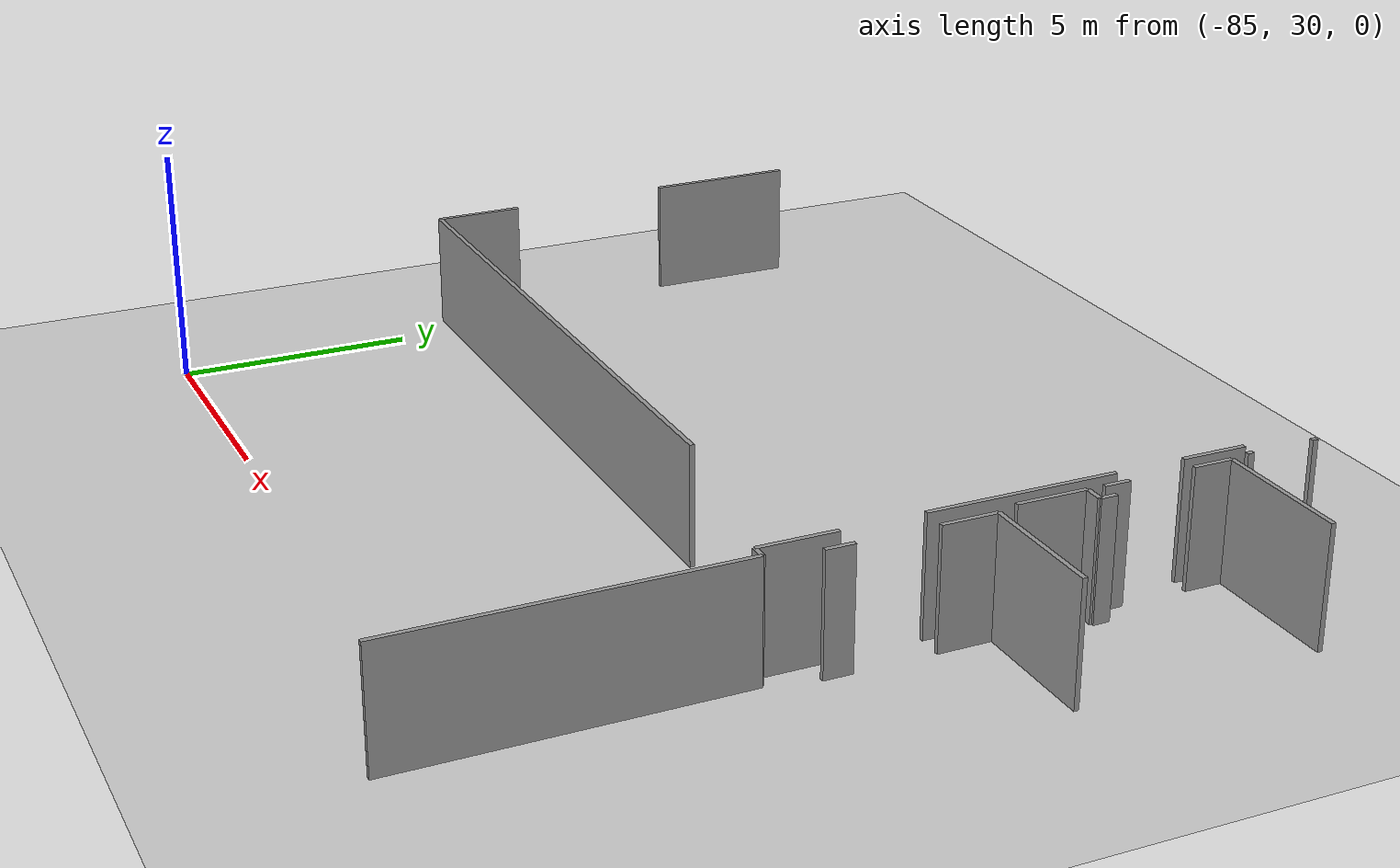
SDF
<sdf version="1.6">
 <world name="default">
  <model name="ground_plane">
   <static>1</static>
   <link name="link">
    <collision name="collision">
     <geometry><plane><normal>0 0 1</normal><size>100 100</size></plane></geometry>
     <surface><friction><ode><mu>100</mu><mu2>50</mu2></ode></friction></surface>
    </collision>
    <visual name="visual">
     <cast_shadows>0</cast_shadows>
     <geometry><plane><normal>0 0 1</normal><size>100 100</size></plane></geometry>
     <material>
      <script><uri>file://media/materials/scripts/gazebo.material</uri><name>Gazebo/Grey</name></script>
     </material>
    </visual>
   </link>
  </model>
  <model name="0510035517_A_40_1_105">
   <static>1</static>
   <link name="Wall_0">
    <collision name="Wall_0_Collision">
     <geometry><box><size>1.88991187104 0.1 2.5</size></box></geometry>
     <pose>0.94495593552 0 1.25 0 0 0</pose>
    </collision>
    <visual name="Wall_0_Visual">
     <pose>0.94495593552 0 1.25 0 0 0</pose>
     <geometry><box><size>1.88991187104 0.1 2.5</size></box></geometry>
     <material>
      <script><uri>file://media/materials/scripts/gazebo.material</uri><name>Gazebo/Grey</name></script>
      <ambient>1 1 1 1</ambient>
     </material>
    </visual>
    <pose>8.88151833425 -27.5061474238 0 0 0 1.57079632679</pose>
   </link>
   <link name="Wall_1">
    <collision name="Wall_1_Collision">
     <geometry><box><size>3.19170431368 0.1 2.5</size></box></geometry>
     <pose>1.59585215684 0 1.25 0 0 0</pose>
    </collision>
    <visual name="Wall_1_Visual">
     <pose>1.59585215684 0 1.25 0 0 0</pose>
     <geometry><box><size>3.19170431368 0.1 2.5</size></box></geometry>
     <material>
      <script><uri>file://media/materials/scripts/gazebo.material</uri><name>Gazebo/Grey</name></script>
      <ambient>1 1 1 1</ambient>
     </material>
    </visual>
    <pose>8.88151833425 -22.0173716348 0 0 0 1.57079632679</pose>
   </link>
   <link name="Wall_8">
    <collision name="Wall_8_Collision">
     <geometry><box><size>13.9150995061 0.1 2.5</size></box></geometry>
     <pose>6.95754975306 0 1.25 0 0 0</pose>
    </collision>
    <visual name="Wall_8_Visual">
     <pose>6.95754975306 0 1.25 0 0 0</pose>
     <geometry><box><size>13.9150995061 0.1 2.5</size></box></geometry>
     <material>
      <script><uri>file://media/materials/scripts/gazebo.material</uri><name>Gazebo/Grey</name></script>
      <ambient>1 1 1 1</ambient>
     </material>
    </visual>
    <pose>22.7966171696 -27.5018267538 0 0 0 -3.14128215132</pose>
   </link>
   <link name="Wall_123">
    <collision name="Wall_123_Collision">
     <geometry><box><size>1.34042431521 0.1 2.5</size></box></geometry>
     <pose>0.670212157603 0 1.25 0 0 0</pose>
    </collision>
    <visual name="Wall_123_Visual">
     <pose>0.670212157603 0 1.25 0 0 0</pose>
     <geometry><box><size>1.34042431521 0.1 2.5</size></box></geometry>
     <material>
      <script><uri>file://media/materials/scripts/gazebo.material</uri><name>Gazebo/Grey</name></script>
      <ambient>1 1 1 1</ambient>
     </material>
    </visual>
    <pose>27.0532395494 -18.3422605999 0 0 0 -1.57079632679</pose>
   </link>
   <link name="Wall_124">
    <collision name="Wall_124_Collision">
     <geometry><box><size>3.89368610333 0.1 2.5</size></box></geometry>
     <pose>1.94684305166 0 1.25 0 0 0</pose>
    </collision>
    <visual name="Wall_124_Visual">
     <pose>1.94684305166 0 1.25 0 0 0</pose>
     <geometry><box><size>3.89368610333 0.1 2.5</size></box></geometry>
     <material>
      <script><uri>file://media/materials/scripts/gazebo.material</uri><name>Gazebo/Grey</name></script>
      <ambient>1 1 1 1</ambient>
     </material>
    </visual>
    <pose>27.0532395494 -21.1123183571 0 0 0 -1.57079632679</pose>
   </link>
   <link name="Wall_125">
    <collision name="Wall_125_Collision">
     <geometry><box><size>1.61033910905 0.1 2.5</size></box></geometry>
     <pose>0.805169554526 0 1.25 0 0 0</pose>
    </collision>
    <visual name="Wall_125_Visual">
     <pose>0.805169554526 0 1.25 0 0 0</pose>
     <geometry><box><size>1.61033910905 0.1 2.5</size></box></geometry>
     <material>
      <script><uri>file://media/materials/scripts/gazebo.material</uri><name>Gazebo/Grey</name></script>
      <ambient>1 1 1 1</ambient>
     </material>
    </visual>
    <pose>27.0532395494 -26.6826785612 0 0 0 -1.57079632679</pose>
   </link>
   <link name="Wall_126">
    <collision name="Wall_126_Collision">
     <geometry><box><size>0.306513409962 0.1 2.5</size></box></geometry>
     <pose>0.153256704981 0 1.25 0 0 0</pose>
    </collision>
    <visual name="Wall_126_Visual">
     <pose>0.153256704981 0 1.25 0 0 0</pose>
     <geometry><box><size>0.306513409962 0.1 2.5</size></box></geometry>
     <material>
      <script><uri>file://media/materials/scripts/gazebo.material</uri><name>Gazebo/Grey</name></script>
      <ambient>1 1 1 1</ambient>
     </material>
    </visual>
    <pose>27.0532395494 -28.2930176703 0 0 0 0.0</pose>
   </link>
   <link name="Wall_127">
    <collision name="Wall_127_Collision">
     <geometry><box><size>6.99038661727 0.1 2.5</size></box></geometry>
     <pose>3.49519330864 0 1.25 0 0 0</pose>
    </collision>
    <visual name="Wall_127_Visual">
     <pose>3.49519330864 0 1.25 0 0 0</pose>
     <geometry><box><size>6.99038661727 0.1 2.5</size></box></geometry>
     <material>
      <script><uri>file://media/materials/scripts/gazebo.material</uri><name>Gazebo/Grey</name></script>
      <ambient>1 1 1 1</ambient>
     </material>
    </visual>
    <pose>27.3597529593 -28.2930176703 0 0 0 -1.56697871881</pose>
   </link>
   <link name="Wall_135">
    <collision name="Wall_135_Collision">
     <geometry><box><size>0.135719868092 0.1 2.5</size></box></geometry>
     <pose>0.0678599340462 0 1.25 0 0 0</pose>
    </collision>
    <visual name="Wall_135_Visual">
     <pose>0.0678599340462 0 1.25 0 0 0</pose>
     <geometry><box><size>0.135719868092 0.1 2.5</size></box></geometry>
     <material>
      <script><uri>file://media/materials/scripts/gazebo.material</uri><name>Gazebo/Grey</name></script>
      <ambient>1 1 1 1</ambient>
     </material>
    </visual>
    <pose>27.3394203948 -18.4901800067 0 0 0 1.57079632679</pose>
   </link>
   <link name="Wall_136">
    <collision name="Wall_136_Collision">
     <geometry><box><size>0.114116518302 0.1 2.5</size></box></geometry>
     <pose>0.0570582591512 0 1.25 0 0 0</pose>
    </collision>
    <visual name="Wall_136_Visual">
     <pose>0.0570582591512 0 1.25 0 0 0</pose>
     <geometry><box><size>0.114116518302 0.1 2.5</size></box></geometry>
     <material>
      <script><uri>file://media/materials/scripts/gazebo.material</uri><name>Gazebo/Grey</name></script>
      <ambient>1 1 1 1</ambient>
     </material>
    </visual>
    <pose>27.3394203948 -17.0455512984 0 0 0 1.57079632679</pose>
   </link>
   <link name="Wall_141">
    <collision name="Wall_141_Collision">
     <geometry><box><size>1.45327004823 0.1 2.5</size></box></geometry>
     <pose>0.726635024113 0 1.25 0 0 0</pose>
    </collision>
    <visual name="Wall_141_Visual">
     <pose>0.726635024113 0 1.25 0 0 0</pose>
     <geometry><box><size>1.45327004823 0.1 2.5</size></box></geometry>
     <material>
      <script><uri>file://media/materials/scripts/gazebo.material</uri><name>Gazebo/Grey</name></script>
      <ambient>1 1 1 1</ambient>
     </material>
    </visual>
    <pose>27.4220214381 -23.4106606177 0 0 0 1.57079632679</pose>
   </link>
   <link name="Wall_142">
    <collision name="Wall_142_Collision">
     <geometry><box><size>0.406397133108 0.1 2.5</size></box></geometry>
     <pose>0.203198566554 0 1.25 0 0 0</pose>
    </collision>
    <visual name="Wall_142_Visual">
     <pose>0.203198566554 0 1.25 0 0 0</pose>
     <geometry><box><size>0.406397133108 0.1 2.5</size></box></geometry>
     <material>
      <script><uri>file://media/materials/scripts/gazebo.material</uri><name>Gazebo/Grey</name></script>
      <ambient>1 1 1 1</ambient>
     </material>
    </visual>
    <pose>27.4220214381 -21.9573905695 0 0 0 0.0</pose>
   </link>
   <link name="Wall_143">
    <collision name="Wall_143_Collision">
     <geometry><box><size>0.346670224865 0.1 2.5</size></box></geometry>
     <pose>0.173335112433 0 1.25 0 0 0</pose>
    </collision>
    <visual name="Wall_143_Visual">
     <pose>0.173335112433 0 1.25 0 0 0</pose>
     <geometry><box><size>0.346670224865 0.1 2.5</size></box></geometry>
     <material>
      <script><uri>file://media/materials/scripts/gazebo.material</uri><name>Gazebo/Grey</name></script>
      <ambient>1 1 1 1</ambient>
     </material>
    </visual>
    <pose>27.8284185713 -21.9573905695 0 0 0 1.57079632679</pose>
   </link>
   <link name="Wall_145">
    <collision name="Wall_145_Collision">
     <geometry><box><size>0.538558802412 0.1 2.5</size></box></geometry>
     <pose>0.269279401206 0 1.25 0 0 0</pose>
    </collision>
    <visual name="Wall_145_Visual">
     <pose>0.269279401206 0 1.25 0 0 0</pose>
     <geometry><box><size>0.538558802412 0.1 2.5</size></box></geometry>
     <material>
      <script><uri>file://media/materials/scripts/gazebo.material</uri><name>Gazebo/Grey</name></script>
      <ambient>1 1 1 1</ambient>
     </material>
    </visual>
    <pose>27.4293919928 -21.6107203446 0 0 0 1.57079632679</pose>
   </link>
   <link name="Wall_146">
    <collision name="Wall_146_Collision">
     <geometry><box><size>0.821943920246 0.1 2.5</size></box></geometry>
     <pose>0.410971960123 0 1.25 0 0 0</pose>
    </collision>
    <visual name="Wall_146_Visual">
     <pose>0.410971960123 0 1.25 0 0 0</pose>
     <geometry><box><size>0.821943920246 0.1 2.5</size></box></geometry>
     <material>
      <script><uri>file://media/materials/scripts/gazebo.material</uri><name>Gazebo/Grey</name></script>
      <ambient>1 1 1 1</ambient>
     </material>
    </visual>
    <pose>27.4293919928 -19.7053048932 0 0 0 1.57079632679</pose>
   </link>
   <link name="Wall_147">
    <collision name="Wall_147_Collision">
     <geometry><box><size>2.92458524745 0.1 2.5</size></box></geometry>
     <pose>1.46229262373 0 1.25 0 0 0</pose>
    </collision>
    <visual name="Wall_147_Visual">
     <pose>1.46229262373 0 1.25 0 0 0</pose>
     <geometry><box><size>2.92458524745 0.1 2.5</size></box></geometry>
     <material>
      <script><uri>file://media/materials/scripts/gazebo.material</uri><name>Gazebo/Grey</name></script>
      <ambient>1 1 1 1</ambient>
     </material>
    </visual>
    <pose>27.4293919928 -18.8833609729 0 0 0 0.0</pose>
   </link>
   <link name="Wall_154">
    <collision name="Wall_154_Collision">
     <geometry><box><size>2.72380117293 0.1 2.5</size></box></geometry>
     <pose>1.36190058647 0 1.25 0 0 0</pose>
    </collision>
    <visual name="Wall_154_Visual">
     <pose>1.36190058647 0 1.25 0 0 0</pose>
     <geometry><box><size>2.72380117293 0.1 2.5</size></box></geometry>
     <material>
      <script><uri>file://media/materials/scripts/gazebo.material</uri><name>Gazebo/Grey</name></script>
      <ambient>1 1 1 1</ambient>
     </material>
    </visual>
    <pose>27.5795988131 -23.8587395081 0 0 0 0.0</pose>
   </link>
   <link name="Wall_157">
    <collision name="Wall_157_Collision">
     <geometry><box><size>0.592440098359 0.1 2.5</size></box></geometry>
     <pose>0.296220049179 0 1.25 0 0 0</pose>
    </collision>
    <visual name="Wall_157_Visual">
     <pose>0.296220049179 0 1.25 0 0 0</pose>
     <geometry><box><size>0.592440098359 0.1 2.5</size></box></geometry>
     <material>
      <script><uri>file://media/materials/scripts/gazebo.material</uri><name>Gazebo/Grey</name></script>
      <ambient>1 1 1 1</ambient>
     </material>
    </visual>
    <pose>27.5867152107 -27.254277781 0 0 0 1.57079632679</pose>
   </link>
   <link name="Wall_158">
    <collision name="Wall_158_Collision">
     <geometry><box><size>1.15313252381 0.1 2.5</size></box></geometry>
     <pose>0.576566261907 0 1.25 0 0 0</pose>
    </collision>
    <visual name="Wall_158_Visual">
     <pose>0.576566261907 0 1.25 0 0 0</pose>
     <geometry><box><size>1.15313252381 0.1 2.5</size></box></geometry>
     <material>
      <script><uri>file://media/materials/scripts/gazebo.material</uri><name>Gazebo/Grey</name></script>
      <ambient>1 1 1 1</ambient>
     </material>
    </visual>
    <pose>27.5867152107 -25.0118500728 0 0 0 1.5769677274</pose>
   </link>
   <pose>-94.6 63.7835382475 0 0 0 0</pose>
  </model>
 </world>
</sdf>
